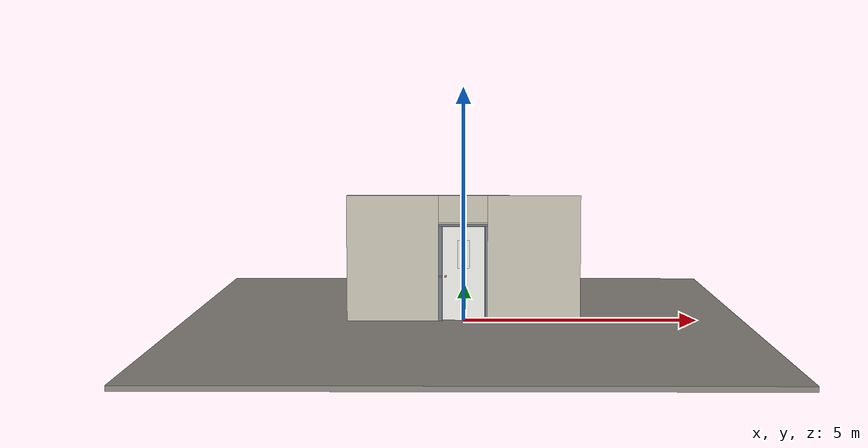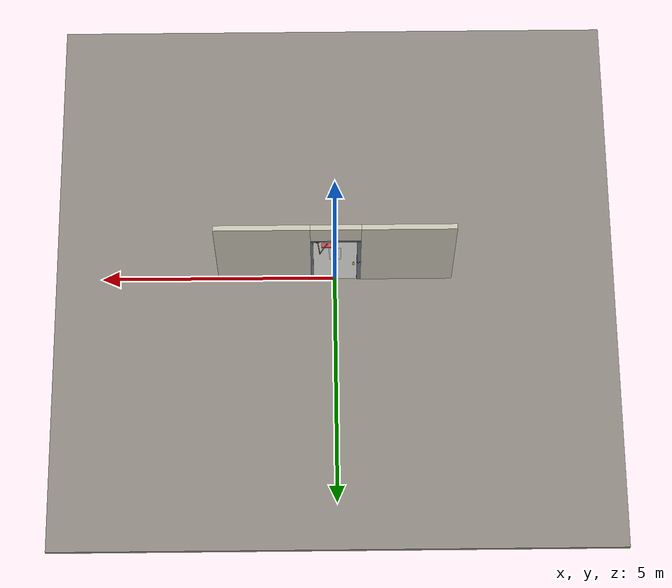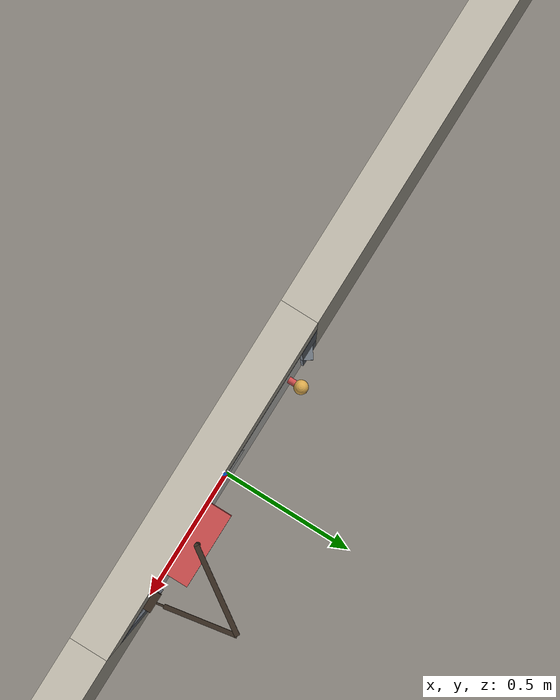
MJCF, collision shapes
<?xml version="1.0" ?>
<mujoco model="db0462_swing_single_full">
  <compiler angle="radian" meshdir="../../hardware" texturedir="../../textures" autolimits="true" inertiafromgeom="false"/>
  <option timestep="0.002" integrator="implicitfast" cone="elliptic" impratio="10" noslip_iterations="3">
    <flag multiccd="enable"/>
  </option>
  <size memory="16M"/>
  <default>
    <geom condim="4" solref="0.005 1" solimp="0.95 0.99 0.001"/>
    <joint solreflimit="0.005 1" solimplimit="0.95 0.99 0.001"/>
    <tendon solreflimit="0.005 1"/>
    <equality solref="0.002 1"/>
  </default>
  <visual>
    <headlight ambient="0.4 0.4 0.4" diffuse="0.7 0.7 0.7" specular="0.2 0.2 0.2"/>
    <quality shadowsize="4096"/>
    <map znear="0.01" zfar="60"/>
  </visual>
  <asset>
    <mesh name="closer_body_b226fdb10b" file="closer_body_b226fdb10b.obj"/>
    <mesh name="hinge_e22b26c0c1" file="hinge_e22b26c0c1.obj"/>
    <mesh name="hinge_jamb_e1d088f8dc" file="hinge_jamb_e1d088f8dc.obj"/>
    <mesh name="knob_d1888f6f03" file="knob_d1888f6f03.obj"/>
    <material name="mat_floor" rgba="0.55 0.53 0.5 1" specular="0.2" shininess="0.15" reflectance="0"/>
    <material name="mat_wall" rgba="0.78 0.76 0.7 1" specular="0.2" shininess="0.1" reflectance="0"/>
    <material name="mat_leaf" rgba="0.93 0.93 0.91 1" specular="0.23" shininess="0.39" reflectance="0.02"/>
    <material name="mat_glass" rgba="0.85 0.92 0.95 0.25" specular="0.2" shininess="0.95" reflectance="0.1"/>
    <material name="mat_hinge" rgba="0.65 0.66 0.68 1" specular="0.74" shininess="0.5" reflectance="0.36"/>
    <material name="mat_op_brass" rgba="0.85 0.66 0.3 1" specular="0.8" shininess="0.75" reflectance="0.4"/>
    <material name="mat_trim" rgba="0.85 0.66 0.3 1" specular="0.8" shininess="0.75" reflectance="0.4"/>
    <material name="mat_keyway" rgba="0.05 0.05 0.05 1" specular="0.2" shininess="0.5" reflectance="0"/>
    <material name="mat_bolt" rgba="0.85 0.66 0.3 1" specular="0.8" shininess="0.75" reflectance="0.4"/>
    <material name="mat_frame" rgba="0.45 0.48 0.52 1" specular="0.32" shininess="0.6" reflectance="0.08"/>
    <material name="mat_closer" rgba="0.22 0.17 0.13 1" specular="0.8" shininess="0.6" reflectance="0.4"/>
    <texture name="skybox" type="skybox" builtin="gradient" rgb1="0.6 0.7 0.85" rgb2="0.9 0.92 0.95" width="256" height="256"/>
  </asset>
  <worldbody>
    <light name="sun" pos="1.5 -2.5 4" dir="-0.3 0.5 -0.8" directional="true" diffuse="0.8 0.8 0.8" specular="0.3 0.3 0.3" castshadow="true"/>
    <light name="fill" pos="-1.5 2.5 3" dir="0.3 -0.5 -0.7" directional="true" diffuse="0.35 0.35 0.4" castshadow="false"/>
    <camera name="robot_view" pos="0 -2.570688 1.734312" xyaxes="1 0 0 0 0.26963 0.962964" fovy="52"/>
    <camera name="far_view" pos="0 2.513687 1.734312" xyaxes="-1 0 0 0 -0.26963 0.962964" fovy="52"/>
    <camera name="iso" pos="-1.932062 -2.163938 2.141063" xyaxes="0.741536 -0.670913 0 0.242917 0.268487 0.932151" fovy="46"/>
    <camera name="detail_handle" pos="-0.2065 -0.8685 1.245" xyaxes="0.97561 0.219512 0 -0.070934 0.315262 0.94635" fovy="38"/>
    <geom name="floor" type="box" size="6 6 0.05" pos="0 0 -0.05" material="mat_floor" group="0" contype="1" conaffinity="1" friction="0.8 0.005 0.0001" density="2400"/>
    <geom name="wall_left" type="box" size="0.97975 0.0575 1.35" pos="-1.52025 -0.0285 1.35" material="mat_wall" group="0" contype="1" conaffinity="1" friction="0.6 0.005 0.0001" density="800"/>
    <geom name="wall_right" type="box" size="0.99475 0.0575 1.35" pos="1.50525 -0.0285 1.35" material="mat_wall" group="0" contype="1" conaffinity="1" friction="0.6 0.005 0.0001" density="800"/>
    <geom name="wall_header" type="box" size="0.5255 0.0575 0.2875" pos="-0.015 -0.0285 2.4125" material="mat_wall" group="0" contype="1" conaffinity="1" friction="0.6 0.005 0.0001" density="800"/>
    <geom name="hinge_0_jamb" type="mesh" mesh="hinge_jamb_e1d088f8dc" pos="0.4575 0.029 0.259" quat="0 0 0 1" material="mat_hinge" group="1" contype="0" conaffinity="0" density="7850"/>
    <geom name="hinge_1_jamb" type="mesh" mesh="hinge_jamb_e1d088f8dc" pos="0.4575 0.029 1.025" quat="0 0 0 1" material="mat_hinge" group="1" contype="0" conaffinity="0" density="7850"/>
    <geom name="hinge_2_jamb" type="mesh" mesh="hinge_jamb_e1d088f8dc" pos="0.4575 0.029 1.861" quat="0 0 0 1" material="mat_hinge" group="1" contype="0" conaffinity="0" density="7850"/>
    <geom name="jamb_hinge" type="box" size="0.025 0.0575 1.0225" pos="0.4855 -0.0285 1.0225" material="mat_frame" group="0" contype="1" conaffinity="1" friction="0.6 0.005 0.0001" density="300"/>
    <geom name="strike_965_wall_n" type="box" size="0.04 0.03825 0.0183" pos="-0.5005 -0.04775 0.965" material="mat_frame" group="0" contype="1" conaffinity="1" friction="0.6 0.005 0.0001" density="300"/>
    <geom name="strike_965_wall_p" type="box" size="0.04 0.008 0.0183" pos="-0.5005 0.0175 0.965" material="mat_frame" group="0" contype="1" conaffinity="1" friction="0.6 0.005 0.0001" density="300"/>
    <geom name="strike_965_ramp" type="box" size="0.04 0.018028 0.0183" pos="-0.503782 0.018312 0.965" quat="0.957092 0 0 0.289784" material="mat_frame" group="0" contype="1" conaffinity="1" friction="0.12 0.005 0.0001" density="300"/>
    <geom name="strike_965_back" type="box" size="0.0285 0.0095 0.0183" pos="-0.512 0 0.965" material="mat_frame" group="0" contype="1" conaffinity="1" friction="0.6 0.005 0.0001" density="300"/>
    <geom name="jamb_strike_0" type="box" size="0.04 0.0575 0.47335" pos="-0.5005 -0.0285 0.47335" material="mat_frame" group="0" contype="1" conaffinity="1" friction="0.6 0.005 0.0001" density="300"/>
    <geom name="jamb_strike_1" type="box" size="0.04 0.0575 0.53085" pos="-0.5005 -0.0285 1.51415" material="mat_frame" group="0" contype="1" conaffinity="1" friction="0.6 0.005 0.0001" density="300"/>
    <geom name="jamb_head" type="box" size="0.5255 0.0575 0.025" pos="-0.015 -0.0285 2.07" material="mat_frame" group="0" contype="1" conaffinity="1" friction="0.6 0.005 0.0001" density="300"/>
    <geom name="head_stud" type="box" size="0.5255 0.0575 0.015" pos="-0.015 -0.0285 2.11" material="mat_wall" group="0" contype="1" conaffinity="1" friction="0.6 0.005 0.0001" density="500"/>
    <geom name="stop_hinge" type="box" size="0.0055 0.016 1.0225" pos="0.455 -0.0385 1.0225" material="mat_frame" group="0" contype="1" conaffinity="1" friction="0.6 0.005 0.0001" density="300"/>
    <geom name="stop_strike" type="box" size="0.0055 0.016 1.0225" pos="-0.455 -0.0385 1.0225" material="mat_frame" group="0" contype="1" conaffinity="1" friction="0.6 0.005 0.0001" density="300"/>
    <geom name="stop_head" type="box" size="0.4605 0.016 0.0055" pos="0 -0.0385 2.0395" material="mat_frame" group="0" contype="1" conaffinity="1" friction="0.6 0.005 0.0001" density="300"/>
    <geom name="closer_bracket" type="box" size="0.03 0.012 0.014" pos="0.3605 0.041 2.075" material="mat_closer" group="1" contype="0" conaffinity="0" density="2700"/>
    <site name="approach_point" pos="0 -1.5 0" quat="1 0 0 0" size="0.05" rgba="0.2 0.9 0.2 0.5" group="4"/>
    <site name="goal_point" pos="0 1.5 0" quat="1 0 0 0" size="0.05" rgba="0.2 0.9 0.2 0.5" group="4"/>
    <site name="door_plane_center" pos="0 0 1.0225" quat="1 0 0 0" size="0.02" rgba="0.2 0.9 0.2 0.5" group="4"/>
    <body name="leaf" pos="0.4605 0 0">
      <inertial pos="-0.427805 0.010239 1.17464" mass="46.789208" quat="0.513059 -0.514589 -0.494315 -0.477097" diaginertia="2.986277804 19.077145754 22.009486334"/>
      <joint name="leaf_hinge" type="hinge" axis="0 0 -1" pos="-0.003 0.029 0" limited="true" range="0 1.745329" damping="10.25611" frictionloss="0.264931" stiffness="12.598705" springref="-1.600164" armature="0.02"/>
      <geom name="leaf_slab" type="box" size="0.457 0.022 1.016" pos="-0.46 0 1.025" material="mat_leaf" group="0" contype="1" conaffinity="1" friction="0.4 0.005 0.0001" density="1"/>
      <geom name="leaf_glass_0" type="box" size="0.125 0.0228 0.3048" pos="-0.46 0 1.4314" material="mat_glass" group="1" contype="0" conaffinity="0" density="1"/>
      <geom name="hinge_0" type="mesh" mesh="hinge_e22b26c0c1" pos="-0.003 0.029 0.259" quat="0 0 0 1" material="mat_hinge" group="1" contype="0" conaffinity="0" density="7850"/>
      <geom name="hinge_1" type="mesh" mesh="hinge_e22b26c0c1" pos="-0.003 0.029 1.025" quat="0 0 0 1" material="mat_hinge" group="1" contype="0" conaffinity="0" density="7850"/>
      <geom name="hinge_2" type="mesh" mesh="hinge_e22b26c0c1" pos="-0.003 0.029 1.861" quat="0 0 0 1" material="mat_hinge" group="1" contype="0" conaffinity="0" density="7850"/>
      <geom name="leaf_latch_bolt_faceplate" type="box" size="0.0006 0.014 0.0283" pos="-0.9164 0 0.965" material="mat_bolt" group="1" contype="0" conaffinity="0" density="8500"/>
      <geom name="closer_body" type="mesh" mesh="closer_body_b226fdb10b" pos="-0.3 0.022 1.952" quat="0 0 0.707107 0.707107" material="mat_closer" group="1" contype="0" conaffinity="0" density="2000"/>
      <geom name="closer_body_col" type="box" size="0.12 0.04 0.03" pos="-0.3 0.062 1.952" material="mat_closer" group="3" contype="1" conaffinity="1" rgba="0.8 0.3 0.3 0.25" friction="0.6 0.005 0.0001" density="2000"/>
      <geom name="closer_pinion_shaft" type="cylinder" size="0.008 0.0615" pos="-0.3 0.064 2.0135" material="mat_closer" group="1" contype="0" conaffinity="0" density="2700"/>
      <site name="leaf_edge_mid" pos="-0.917 0 1.016" quat="1 0 0 0" size="0.02" rgba="0.2 0.9 0.2 0.5" group="4"/>
      <body name="leaf_handle" pos="-0.847 0 0.965">
        <inertial pos="0 -0.000049 0" mass="1.16269" quat="0.5 0.5 0.5 0.5" diaginertia="0.000312763 0.00435664 0.004356644"/>
        <joint name="leaf_handle_hinge" type="hinge" axis="0 1 0" limited="true" range="0 0.87" damping="0.143616" frictionloss="0.038" stiffness="0.5" springref="-0.5" armature="0.01"/>
        <geom name="leaf_handle_spindle" type="cylinder" size="0.006 0.03" pos="0 0 0" quat="0.707107 -0.707107 0 0" material="mat_op_brass" group="1" contype="0" conaffinity="0" density="7850"/>
        <geom name="leaf_handle_knob_n" type="mesh" mesh="knob_d1888f6f03" pos="0 -0.022 0" quat="0 0 -0.707107 0.707107" material="mat_op_brass" group="1" contype="0" conaffinity="0" density="3000"/>
        <geom name="leaf_handle_knob_col_n" type="sphere" size="0.0243" pos="0 -0.0685 0" material="mat_op_brass" group="0" contype="1" conaffinity="1" friction="0.9 0.01 0.0001" density="3000"/>
        <geom name="leaf_handle_knob_neck_n" type="cylinder" size="0.011 0.012" pos="0 -0.034 0" quat="0.707107 -0.707107 0 0" material="mat_op_brass" group="3" contype="1" conaffinity="1" rgba="0.8 0.3 0.3 0.25" friction="0.6 0.005 0.0001" density="3000"/>
        <geom name="leaf_handle_turn_button_n" type="cylinder" size="0.005 0.005" pos="0 -0.0941 0" quat="0.707107 -0.707107 0 0" material="mat_trim" group="1" contype="0" conaffinity="0" density="7100"/>
        <geom name="leaf_handle_knob_p" type="mesh" mesh="knob_d1888f6f03" pos="0 0.022 0" quat="0 0 0.707107 0.707107" material="mat_op_brass" group="1" contype="0" conaffinity="0" density="3000"/>
        <geom name="leaf_handle_knob_col_p" type="sphere" size="0.0243" pos="0 0.0685 0" material="mat_op_brass" group="0" contype="1" conaffinity="1" friction="0.9 0.01 0.0001" density="3000"/>
        <geom name="leaf_handle_knob_neck_p" type="cylinder" size="0.011 0.012" pos="0 0.034 0" quat="0.707107 -0.707107 0 0" material="mat_op_brass" group="3" contype="1" conaffinity="1" rgba="0.8 0.3 0.3 0.25" friction="0.6 0.005 0.0001" density="3000"/>
        <geom name="leaf_handle_cylinder_p" type="cylinder" size="0.0085 0.0015" pos="0 0.0906 0" quat="0.707107 -0.707107 0 0" material="mat_trim" group="1" contype="0" conaffinity="0" density="7100"/>
        <geom name="leaf_handle_keyway_p" type="box" size="0.0012 0.0008 0.006" pos="0 0.0926 0" material="mat_keyway" group="1" contype="0" conaffinity="0" density="7100"/>
        <site name="leaf_handle_grip_n" pos="0 -0.0685 0" quat="1 0 0 0" size="0.012" rgba="0.2 0.9 0.2 0.5" group="4"/>
        <site name="leaf_handle_grip_p" pos="0 0.0685 0" quat="1 0 0 0" size="0.012" rgba="0.2 0.9 0.2 0.5" group="4"/>
      </body>
      <body name="leaf_latch_bolt" pos="-0.917 0 0.965">
        <inertial pos="0.0055 0 0" mass="0.074627" quat="0.92388 0.382683 0 0" diaginertia="0.000002271 0.000013255 0.000013255"/>
        <joint name="leaf_latch_bolt_slide" type="slide" axis="1 0 0" limited="true" range="0 0.019" damping="2" frictionloss="0.3" stiffness="600" springref="-0.01" armature="0.1"/>
        <geom name="leaf_latch_bolt_capsule" type="capsule" size="0.008 0.0165" pos="0.0055 0 0" quat="0.707107 0 -0.707107 0" material="mat_bolt" group="0" contype="1" conaffinity="1" friction="0.2 0.005 0.0001" density="8500"/>
      </body>
      <body name="closer_arm_main" pos="-0.3 0.064 2.075" quat="0.881485 0 0 0.472212">
        <inertial pos="0.14 0 0" mass="0.12096" quat="1 0 0 0" diaginertia="0.000003588 0.00079128 0.000792852"/>
        <joint name="closer_pinion" type="hinge" axis="0 0 1" limited="false" damping="0.01" armature="0.002"/>
        <geom name="closer_arm_main_geom" type="box" size="0.14 0.008 0.005" pos="0.14 0 0" material="mat_closer" group="1" contype="0" conaffinity="0" density="2700"/>
        <body name="closer_arm_fore" pos="0.28 0 0" quat="0.371222 0 0 -0.928544">
          <inertial pos="0.128088 0 0" mass="0.076531" quat="1 0 0 0" diaginertia="0.000001771 0.000437665 0.000438201"/>
          <joint name="closer_elbow" type="hinge" axis="0 0 1" limited="false" damping="0.01" armature="0.002"/>
          <geom name="closer_arm_fore_geom" type="box" size="0.1125 0.007 0.004" pos="0.1125 0 0" material="mat_closer" group="1" contype="0" conaffinity="0" density="2700"/>
          <geom name="closer_fore_neck" type="box" size="0.0175 0.003 0.003" pos="0.2425 0 0" material="mat_closer" group="1" contype="0" conaffinity="0" density="2700"/>
          <geom name="closer_fore_pivot" type="cylinder" size="0.005 0.012" pos="0.26 0 0" material="mat_closer" group="1" contype="0" conaffinity="0" density="2700"/>
        </body>
      </body>
    </body>
  </worldbody>
  <tendon>
    <fixed name="leaf_latch_bolt_coupling" limited="true" range="0 10">
      <joint joint="leaf_latch_bolt_slide" coef="1"/>
      <joint joint="leaf_handle_hinge" coef="-0.023457"/>
    </fixed>
  </tendon>
  <equality>
    <connect name="closer_arm_connect" body1="closer_arm_fore" body2="world" anchor="0.26 0 0" active="true"/>
  </equality>
  <contact>
    <exclude body1="closer_arm_main" body2="leaf"/>
    <exclude body1="closer_arm_fore" body2="leaf"/>
    <exclude body1="closer_arm_main" body2="closer_arm_fore"/>
  </contact>
  <sensor>
    <jointpos name="leaf_hinge_pos" joint="leaf_hinge"/>
    <jointvel name="leaf_hinge_vel" joint="leaf_hinge"/>
    <jointpos name="leaf_handle_hinge_pos" joint="leaf_handle_hinge"/>
    <jointvel name="leaf_handle_hinge_vel" joint="leaf_handle_hinge"/>
    <jointpos name="leaf_latch_bolt_slide_pos" joint="leaf_latch_bolt_slide"/>
    <jointvel name="leaf_latch_bolt_slide_vel" joint="leaf_latch_bolt_slide"/>
  </sensor>
</mujoco>
